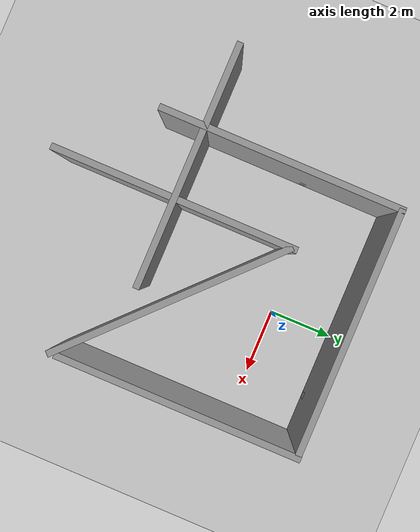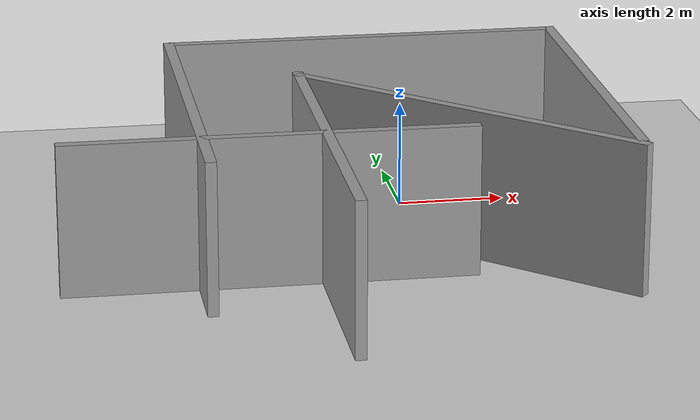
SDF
<sdf version="1.4">
 <world name="default">
  <light name="sun" type="directional">
   <pose>0 0 10 0 -0 0</pose>
   <diffuse>0.8 0.8 0.8 1</diffuse>
   <specular>0.2 0.2 0.2 1</specular>
   <attenuation>
    <range>1000</range>
    <constant>0.9</constant>
    <linear>0.01</linear>
    <quadratic>0.001</quadratic>
   </attenuation>
   <direction>-0.5 0.1 -0.9</direction>
  </light>
  <model name="ground_plane">
   <static>1</static>
   <link name="link">
    <collision name="collision">
     <geometry><plane><normal>0 0 1</normal><size>100 100</size></plane></geometry>
     <surface><friction><ode><mu>100</mu><mu2>50</mu2></ode></friction></surface>
    </collision>
    <visual name="visual">
     <cast_shadows>0</cast_shadows>
     <geometry><plane><normal>0 0 1</normal><size>100 100</size></plane></geometry>
     <material>
      <script><uri>file://media/materials/scripts/gazebo.material</uri><name>Gazebo/Grey</name></script>
     </material>
    </visual>
    <velocity_decay><linear>0</linear><angular>0</angular></velocity_decay>
   </link>
  </model>
  <physics type="ode">
   <max_step_size>0.001</max_step_size>
   <real_time_factor>1</real_time_factor>
   <real_time_update_rate>1000</real_time_update_rate>
   <gravity>0 0 -9.8</gravity>
  </physics>
  <scene><ambient>0.4 0.4 0.4 1</ambient><background>0.7 0.7 0.7 1</background><shadows>1</shadows></scene>
  <spherical_coordinates>
   <surface_model>EARTH_WGS84</surface_model>
   <latitude_deg>0</latitude_deg>
   <longitude_deg>0</longitude_deg>
   <elevation>0</elevation>
   <heading_deg>0</heading_deg>
  </spherical_coordinates>
  <model name="grey_wall_0">
   <static>1</static>
   <link name="link">
    <pose>0 0 1.4 0 -0 0</pose>
    <collision name="collision"><geometry><box><size>7.5 0.2 2.8</size></box></geometry></collision>
    <visual name="visual">
     <cast_shadows>0</cast_shadows>
     <geometry><box><size>7.5 0.2 2.8</size></box></geometry>
     <material>
      <script>
       <uri>model://grey_wall/materials/scripts</uri>
       <uri>model://grey_wall/materials/textures</uri>
       <name>vrc/grey_wall</name>
      </script>
     </material>
    </visual>
    <velocity_decay><linear>0</linear><angular>0</angular></velocity_decay>
   </link>
   <pose>-2 -4 0 0 0 -1.5708</pose>
  </model>
  <model name="grey_wall_1">
   <static>1</static>
   <link name="link">
    <pose>0 0 1.4 0 -0 0</pose>
    <collision name="collision"><geometry><box><size>7.5 0.2 2.8</size></box></geometry></collision>
    <visual name="visual">
     <cast_shadows>0</cast_shadows>
     <geometry><box><size>7.5 0.2 2.8</size></box></geometry>
     <material>
      <script>
       <uri>model://grey_wall/materials/scripts</uri>
       <uri>model://grey_wall/materials/textures</uri>
       <name>vrc/grey_wall</name>
      </script>
     </material>
    </visual>
    <velocity_decay><linear>0</linear><angular>0</angular></velocity_decay>
   </link>
   <pose>3.34161 -1.63267 0 0 0 -1.5708</pose>
  </model>
  <model name="grey_wall_8">
   <static>1</static>
   <link name="link">
    <pose>0 0 1.4 0 -0 0</pose>
    <collision name="collision"><geometry><box><size>7.5 0.2 2.8</size></box></geometry></collision>
    <visual name="visual">
     <cast_shadows>0</cast_shadows>
     <geometry><box><size>7.5 0.2 2.8</size></box></geometry>
     <material>
      <script>
       <uri>model://grey_wall/materials/scripts</uri>
       <uri>model://grey_wall/materials/textures</uri>
       <name>vrc/grey_wall</name>
      </script>
     </material>
    </visual>
    <velocity_decay><linear>0</linear><angular>0</angular></velocity_decay>
   </link>
   <pose>-0.476289 2.00818 0 0 -0 0</pose>
  </model>
  <model name="grey_wall_9">
   <static>1</static>
   <link name="link">
    <pose>0 0 1.4 0 -0 0</pose>
    <collision name="collision"><geometry><box><size>7.5 0.2 2.8</size></box></geometry></collision>
    <visual name="visual">
     <cast_shadows>0</cast_shadows>
     <geometry><box><size>7.5 0.2 2.8</size></box></geometry>
     <material>
      <script>
       <uri>model://grey_wall/materials/scripts</uri>
       <uri>model://grey_wall/materials/textures</uri>
       <name>vrc/grey_wall</name>
      </script>
     </material>
    </visual>
    <velocity_decay><linear>0</linear><angular>0</angular></velocity_decay>
   </link>
   <pose>0.688886 -2.98705 0 0 -0 2.3806</pose>
  </model>
  <model name="grey_wall_3">
   <static>1</static>
   <link name="link">
    <pose>0 0 1.4 0 -0 0</pose>
    <collision name="collision"><geometry><box><size>7.5 0.2 2.8</size></box></geometry></collision>
    <visual name="visual">
     <cast_shadows>0</cast_shadows>
     <geometry><box><size>7.5 0.2 2.8</size></box></geometry>
     <material>
      <script>
       <uri>model://grey_wall/materials/scripts</uri>
       <uri>model://grey_wall/materials/textures</uri>
       <name>vrc/grey_wall</name>
      </script>
     </material>
    </visual>
    <velocity_decay><linear>0</linear><angular>0</angular></velocity_decay>
   </link>
   <pose>-3 -4 0 0 -0 0</pose>
  </model>
  <model name="grey_wall_4">
   <static>1</static>
   <link name="link">
    <pose>0 0 1.4 0 -0 0</pose>
    <collision name="collision"><geometry><box><size>7.5 0.2 2.8</size></box></geometry></collision>
    <visual name="visual">
     <cast_shadows>0</cast_shadows>
     <geometry><box><size>7.5 0.2 2.8</size></box></geometry>
     <material>
      <script>
       <uri>model://grey_wall/materials/scripts</uri>
       <uri>model://grey_wall/materials/textures</uri>
       <name>vrc/grey_wall</name>
      </script>
     </material>
    </visual>
    <velocity_decay><linear>0</linear><angular>0</angular></velocity_decay>
   </link>
   <pose>-4.19678 -1.64869 0 0 0 -1.5708</pose>
  </model>
  <model name="cluedo_character_0">
   <static>1</static>
   <link name="link">
    <collision name="collision">
     <geometry><plane><normal>0 0 1</normal><size>0.21 0.297</size></plane></geometry>
     <surface><friction><ode><mu>100</mu><mu2>50</mu2></ode></friction></surface>
    </collision>
    <visual name="visual">
     <pose>-8.09 -0.7 0.4 1.57 -5.55112e-17 1.57</pose>
     <cast_shadows>0</cast_shadows>
     <geometry><plane><normal>0 0 1</normal><size>0.21 0.297</size></plane></geometry>
     <material>
      <script>
       <uri>model://cluedo_character/materials/scripts</uri>
       <uri>model://cluedo_character/materials/textures</uri>
       <name>Cluedo_character/Image</name>
      </script>
     </material>
    </visual>
    <velocity_decay><linear>0</linear><angular>0</angular></velocity_decay>
   </link>
   <pose>4 0 0 0 -0 0</pose>
  </model>
  <model name="cluedo_weapon_0">
   <static>1</static>
   <link name="link">
    <collision name="collision">
     <geometry><plane><normal>0 0 1</normal><size>0.21 0.297</size></plane></geometry>
     <surface><friction><ode><mu>100</mu><mu2>50</mu2></ode></friction></surface>
    </collision>
    <visual name="visual">
     <pose>-6 -0.11 0.4 1.57 -0 0</pose>
     <cast_shadows>0</cast_shadows>
     <geometry><plane><normal>0 0 1</normal><size>0.21 0.297</size></plane></geometry>
     <material>
      <script>
       <uri>model://cluedo_weapon/materials/scripts</uri>
       <uri>model://cluedo_weapon/materials/textures</uri>
       <name>Cluedo_weapon/Image</name>
      </script>
     </material>
    </visual>
    <velocity_decay><linear>0</linear><angular>0</angular></velocity_decay>
   </link>
   <pose>8 2 0 0 -0 0</pose>
  </model>
 </world>
</sdf>
